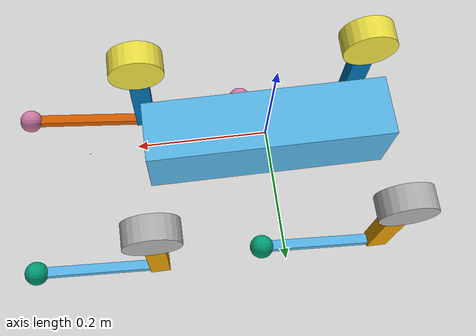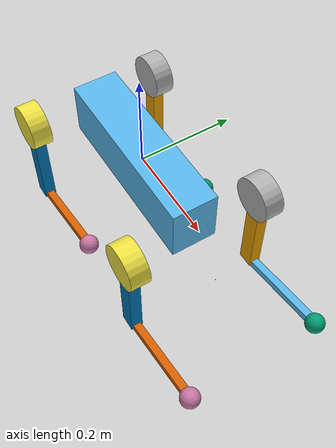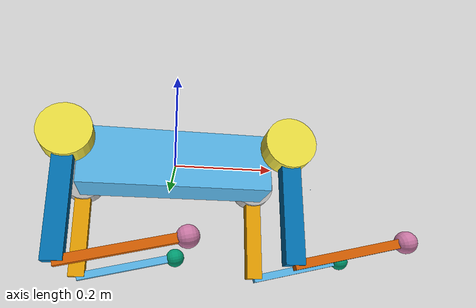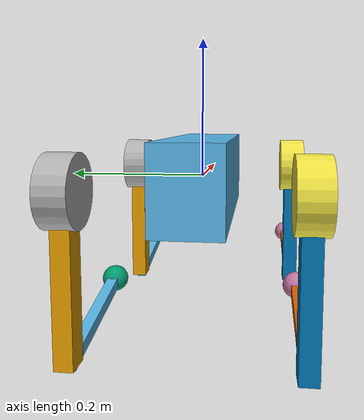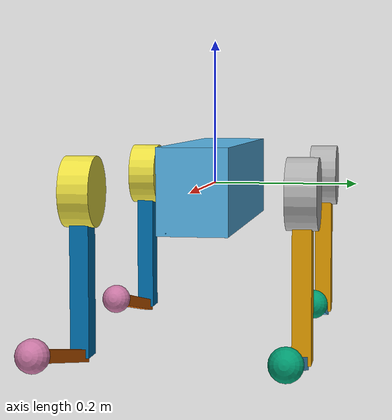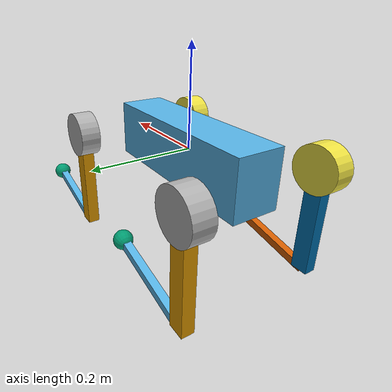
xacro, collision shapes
<?xml version="1.0"?>
<robot name="go2"
       xmlns:xacro="http://www.ros.org/wiki/xacro">

  <!-- == xacro arguments == -->
  <xacro:arg name="DEBUG"            default="false"/>
  <xacro:arg name="robot_controllers"
             default="$(find go2_sim)/config/ros_control.yaml"/>

  <!-- Real lidar IMU calibration imported from config/imu_calib_data.yaml -->
  <xacro:property name="lidar_imu_acc_bias_x" value="-0.801651"/>
  <xacro:property name="lidar_imu_acc_bias_y" value="1.72345"/>
  <xacro:property name="lidar_imu_acc_bias_z" value="-0.22166"/>
  <xacro:property name="lidar_imu_ang_bias_x" value="0.00149071"/>
  <xacro:property name="lidar_imu_ang_bias_y" value="0.00388548"/>
  <xacro:property name="lidar_imu_ang_bias_z" value="0.00161095"/>
  <!-- Derived from ang_z2x_proj=0.143694 and ang_z2y_proj=-0.19373 -->
  <xacro:property name="lidar_imu_roll" value="0.194961"/>
  <xacro:property name="lidar_imu_pitch" value="0.144193"/>

  <!-- == Include sub-files (shared sources of truth live in go2_description) == -->
  <xacro:include filename="$(find go2_description)/urdf/const.xacro"/>
  <xacro:include filename="$(find go2_description)/urdf/materials.xacro"/>
  <xacro:include filename="$(find go2_description)/urdf/leg.xacro"/>
  <xacro:include filename="$(find sensor_models)/urdf/l1_lidar.urdf.xacro"/>

  <!-- ign_ros2_control: loads controller_manager, reads ros_control.yaml -->
  <gazebo>
    <plugin filename="ign_ros2_control-system"
            name="ign_ros2_control::IgnitionROS2ControlPlugin">
      <parameters>$(arg robot_controllers)</parameters>
      <robot_param_node>robot_state_publisher</robot_param_node>
    </plugin>
  </gazebo>

  <!-- Joint state publisher: publishes /joint_states from sim -->
  <gazebo>
    <plugin filename="ignition-gazebo-joint-state-publisher-system"
            name="ignition::gazebo::systems::JointStatePublisher">
    </plugin>
  </gazebo>

  <gazebo>
    <plugin filename="ignition-gazebo-odometry-publisher-system"
            name="ignition::gazebo::systems::OdometryPublisher">
      <odom_frame>odom</odom_frame>
      <robot_base_frame>base_link</robot_base_frame>
      <odom_publish_frequency>50</odom_publish_frequency>
    </plugin>
  </gazebo>

  <xacro:if value="$(arg DEBUG)">
    <link name="world"/>
    <joint name="base_static_joint" type="fixed">
      <origin rpy="0 0 0" xyz="0 0 0"/>
      <parent link="world"/>
      <child link="base_link"/>
    </joint>
  </xacro:if>

  <link name="base_link">
    <visual>
      <origin rpy="0 0 0" xyz="0 0 0"/>
      <geometry><box size="0.001 0.001 0.001"/></geometry>
    </visual>
  </link>

  <joint name="floating_base" type="fixed">
    <origin rpy="0 0 0" xyz="0 0 0"/>
    <parent link="base_link"/>
    <child link="trunk"/>
  </joint>

  <link name="trunk">
    <visual>
      <origin rpy="0 0 0" xyz="0 0 0"/>
      <geometry>
        <mesh filename="package://go2_description/meshes/dae/base.dae" scale="1 1 1"/>
      </geometry>
    </visual>
    <collision>
      <origin rpy="0 0 0" xyz="0 0 0"/>
      <geometry>
        <box size="${trunk_length} ${trunk_width} ${trunk_height}"/>
      </geometry>
    </collision>
    <inertial>
      <origin rpy="0 0 0" xyz="${trunk_com_x} ${trunk_com_y} ${trunk_com_z}"/>
      <mass value="${trunk_mass}"/>
      <inertia ixx="${trunk_ixx}" ixy="${trunk_ixy}" ixz="${trunk_ixz}"
               iyy="${trunk_iyy}" iyz="${trunk_iyz}" izz="${trunk_izz}"/>
    </inertial>
  </link>

  <gazebo reference="trunk">
    <mu1>0.2</mu1>
    <mu2>0.2</mu2>
    <kp>10000.0</kp>
    <kd>1.0</kd>
  </gazebo>

  <!-- ====================================================================
       IMU LINK
       ==================================================================== -->
  <joint name="imu_joint" type="fixed">
    <parent link="trunk"/>
    <child link="imu_link"/>
    <origin rpy="0 0 0" xyz="0 0 0"/>
  </joint>

  <link name="imu_link">
    <inertial>
      <mass value="0.001"/>
      <origin rpy="0 0 0" xyz="0 0 0"/>
      <inertia ixx="0.0001" ixy="0" ixz="0" iyy="0.0001" iyz="0" izz="0.0001"/>
    </inertial>
    <visual>
      <origin rpy="0 0 0" xyz="0 0 0"/>
      <geometry><box size="0.001 0.001 0.001"/></geometry>
    </visual>
    <collision>
      <origin rpy="0 0 0" xyz="0 0 0"/>
      <geometry><box size="0.001 0.001 0.001"/></geometry>
    </collision>
  </link>

  <gazebo reference="imu_link">
    <sensor name="imu_sensor" type="imu">
      <always_on>1</always_on>
      <update_rate>200</update_rate>
      <topic>/imu/data</topic>
      <ignition_frame_id>imu_link</ignition_frame_id>
      <imu>
        <angular_velocity>
          <x><noise type="gaussian"><mean>0</mean><stddev>0.009</stddev></noise></x>
          <y><noise type="gaussian"><mean>0</mean><stddev>0.009</stddev></noise></y>
          <z><noise type="gaussian"><mean>0</mean><stddev>0.009</stddev></noise></z>
        </angular_velocity>
        <linear_acceleration>
          <x><noise type="gaussian"><mean>0</mean><stddev>0.021</stddev></noise></x>
          <y><noise type="gaussian"><mean>0</mean><stddev>0.021</stddev></noise></y>
          <z><noise type="gaussian"><mean>0</mean><stddev>0.021</stddev></noise></z>
        </linear_acceleration>
      </imu>
    </sensor>
  </gazebo>

  <!--  RF: mirror=-1 (right), mirror_dae=False (right mesh), front_hind=1, front_hind_dae=True  -->
  <xacro:leg name="rf" mirror="-1" mirror_dae="False" front_hind="1"  front_hind_dae="True"  parent="trunk" with_ros2_control="True"/>
  <!--  LF: mirror=1  (left),  mirror_dae=True  (left mesh),  front_hind=1, front_hind_dae=True  -->
  <xacro:leg name="lf" mirror="1"  mirror_dae="True"  front_hind="1"  front_hind_dae="True"  parent="trunk" with_ros2_control="True"/>
  <!--  RH: mirror=-1 (right), mirror_dae=False (right mesh), front_hind=-1, front_hind_dae=False -->
  <xacro:leg name="rh" mirror="-1" mirror_dae="False" front_hind="-1" front_hind_dae="False" parent="trunk" with_ros2_control="True"/>
  <!--  LH: mirror=1  (left),  mirror_dae=True  (left mesh),  front_hind=-1, front_hind_dae=False -->
  <xacro:leg name="lh" mirror="1"  mirror_dae="True"  front_hind="-1" front_hind_dae="False" parent="trunk" with_ros2_control="True"/>

  <!-- == Gazebo physics properties for legs == -->
  <!-- LF leg -->
  <gazebo reference="lf_hip_link">       <mu1>0.2</mu1><mu2>0.2</mu2></gazebo>
  <gazebo reference="lf_upper_leg_link"> <mu1>0.2</mu1><mu2>0.2</mu2><self_collide>1</self_collide><kp>10000.0</kp><kd>1.0</kd></gazebo>
  <gazebo reference="lf_lower_leg_link"> <mu1>0.2</mu1><mu2>0.2</mu2><self_collide>1</self_collide></gazebo>
  <gazebo reference="LF_FOOT">           <mu1>0.6</mu1><mu2>0.6</mu2><self_collide>1</self_collide><kp>10000.0</kp><kd>1.0</kd></gazebo>
  <!-- RF leg -->
  <gazebo reference="rf_hip_link">       <mu1>0.2</mu1><mu2>0.2</mu2></gazebo>
  <gazebo reference="rf_upper_leg_link"> <mu1>0.2</mu1><mu2>0.2</mu2><self_collide>1</self_collide><kp>10000.0</kp><kd>1.0</kd></gazebo>
  <gazebo reference="rf_lower_leg_link"> <mu1>0.2</mu1><mu2>0.2</mu2><self_collide>1</self_collide></gazebo>
  <gazebo reference="RF_FOOT">           <mu1>0.6</mu1><mu2>0.6</mu2><self_collide>1</self_collide><kp>10000.0</kp><kd>1.0</kd></gazebo>
  <!-- LH leg -->
  <gazebo reference="lh_hip_link">       <mu1>0.2</mu1><mu2>0.2</mu2></gazebo>
  <gazebo reference="lh_upper_leg_link"> <mu1>0.2</mu1><mu2>0.2</mu2><self_collide>1</self_collide><kp>10000.0</kp><kd>1.0</kd></gazebo>
  <gazebo reference="lh_lower_leg_link"> <mu1>0.2</mu1><mu2>0.2</mu2><self_collide>1</self_collide></gazebo>
  <gazebo reference="LH_FOOT">           <mu1>0.6</mu1><mu2>0.6</mu2><self_collide>1</self_collide><kp>10000.0</kp><kd>1.0</kd></gazebo>
  <!-- RH leg -->
  <gazebo reference="rh_hip_link">       <mu1>0.2</mu1><mu2>0.2</mu2></gazebo>
  <gazebo reference="rh_upper_leg_link"> <mu1>0.2</mu1><mu2>0.2</mu2><self_collide>1</self_collide><kp>10000.0</kp><kd>1.0</kd></gazebo>
  <gazebo reference="rh_lower_leg_link"> <mu1>0.2</mu1><mu2>0.2</mu2><self_collide>1</self_collide></gazebo>
  <gazebo reference="RH_FOOT">           <mu1>0.6</mu1><mu2>0.6</mu2><self_collide>1</self_collide><kp>10000.0</kp><kd>1.0</kd></gazebo>

  <gazebo reference="LF_FOOT">
    <sensor name="LF_FOOT_contact" type="contact">
      <always_on>1</always_on>
      <contact>
        <collision>LF_FOOT_collision</collision>
      </contact>
    </sensor>
  </gazebo>

  <gazebo reference="RF_FOOT">
    <sensor name="RF_FOOT_contact" type="contact">
      <always_on>1</always_on>
      <contact>
        <collision>RF_FOOT_collision</collision>
      </contact>
    </sensor>
  </gazebo>

  <gazebo reference="LH_FOOT">
    <sensor name="LH_FOOT_contact" type="contact">
      <always_on>1</always_on>
      <contact>
        <collision>LH_FOOT_collision</collision>
      </contact>
    </sensor>
  </gazebo>

  <gazebo reference="RH_FOOT">
    <sensor name="RH_FOOT_contact" type="contact">
      <always_on>1</always_on>
      <contact>
        <collision>RH_FOOT_collision</collision>
      </contact>
    </sensor>
  </gazebo>

  <xacro:l1_lidar parent="base_link" prefix="">
    <origin xyz="0.28945 0 -0.046825" rpy="0 -0.26179938779915 0"/>
  </xacro:l1_lidar>

  <joint name="lidar_to_lidar_imu" type="fixed">
    <parent link="lidar_link"/>
    <child  link="lidar_imu_link"/>
    <origin xyz="-0.007698 -0.014655 0.00667" rpy="0 0 0"/>
  </joint>

  <link name="lidar_imu_link">
    <inertial>
      <mass value="0.001"/>
      <origin xyz="0 0 0" rpy="0 0 0"/>
      <inertia ixx="1e-7" ixy="0" ixz="0" iyy="1e-7" iyz="0" izz="1e-7"/>
    </inertial>
    <visual>
      <origin rpy="0 0 0" xyz="0 0 0"/>
      <geometry><box size="0.001 0.001 0.001"/></geometry>
    </visual>
    <collision>
      <origin rpy="0 0 0" xyz="0 0 0"/>
      <geometry><box size="0.001 0.001 0.001"/></geometry>
    </collision>
  </link>

  <!--
    UniLidar built-in IMU sensor published on /lidar/imu.
    Bridged to ROS via ros_ign_bridge in sim_champ.launch.py.
    System plugin ignition-gazebo-imu-system is loaded in the world SDF.
  -->
  <gazebo reference="lidar_imu_link">
    <sensor name="lidar_imu_sensor" type="imu">
      <always_on>1</always_on>
      <update_rate>200</update_rate>
      <topic>/lidar/imu</topic>
      <ignition_frame_id>lidar_imu_link</ignition_frame_id>
      <imu>
        <angular_velocity>
          <x><noise type="gaussian"><mean>0.0</mean><stddev>0.009</stddev></noise></x>
          <y><noise type="gaussian"><mean>0.0</mean><stddev>0.009</stddev></noise></y>
          <z><noise type="gaussian"><mean>0.0</mean><stddev>0.009</stddev></noise></z>
        </angular_velocity>
        <linear_acceleration>
          <x><noise type="gaussian"><mean>0.0</mean><stddev>0.021</stddev></noise></x>
          <y><noise type="gaussian"><mean>0.0</mean><stddev>0.021</stddev></noise></y>
          <z><noise type="gaussian"><mean>0.0</mean><stddev>0.021</stddev></noise></z>
        </linear_acceleration>
      </imu>
    </sensor>
  </gazebo>

</robot>

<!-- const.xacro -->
<robot xmlns:xacro="http://www.ros.org/wiki/xacro">

    <!-- ──── Numeric constant ──── -->
    <xacro:property name="PI" value="3.1415926535897931"/>
    <xacro:property name="stick_mass" value="0.00001"/>

    <!-- ──── Simplified collision geometry ──── -->
    <xacro:property name="trunk_width"  value="0.0935"/>
    <xacro:property name="trunk_length" value="0.3762"/>
    <xacro:property name="trunk_height" value="0.114"/>
    <xacro:property name="hip_radius"   value="0.046"/>
    <xacro:property name="hip_length"   value="0.04"/>
    <xacro:property name="thigh_shoulder_radius" value="0.041"/>
    <xacro:property name="thigh_shoulder_length" value="0.032"/>
    <xacro:property name="thigh_width"  value="0.0245"/>
    <xacro:property name="thigh_height" value="0.034"/>
    <xacro:property name="calf_width"   value="0.016"/>
    <xacro:property name="calf_height"  value="0.016"/>
    <xacro:property name="foot_radius"  value="0.02"/>
    <xacro:property name="stick_radius" value="0.01"/>
    <xacro:property name="stick_length" value="0.2"/>

    <!-- ──── Kinematic lengths ──── -->
    <xacro:property name="thigh_offset" value="0.0955"/>
    <xacro:property name="thigh_length" value="0.213"/>
    <xacro:property name="calf_length"  value="0.213"/>

    <!-- ──── Leg offsets from trunk centre ──── -->
    <xacro:property name="leg_offset_x" value="0.1934"/>
    <xacro:property name="leg_offset_y" value="0.0465"/>
    <xacro:property name="hip_offset"   value="0.0955"/>

    <!-- Explicit per-axis offsets (redundant with above, kept for readability) -->
    <xacro:property name="hip_offset_x" value="0.1934"/>
    <xacro:property name="hip_offset_y" value="0.0465"/>
    <xacro:property name="hip_offset_z" value="0.0"/>

    <xacro:property name="thigh_offset_x" value="0"/>
    <xacro:property name="thigh_offset_y" value="0.0955"/>
    <xacro:property name="thigh_offset_z" value="0.0"/>

    <xacro:property name="calf_offset_x" value="0.0"/>
    <xacro:property name="calf_offset_y" value="0.0"/>
    <xacro:property name="calf_offset_z" value="-0.213"/>

    <!-- ──── Joint limits ──── -->
    <xacro:property name="damping"  value="0.01"/>
    <xacro:property name="friction" value="0.2"/>

    <xacro:property name="hip_position_max"   value="1.0472"/>
    <xacro:property name="hip_position_min"   value="-1.0472"/>
    <xacro:property name="hip_velocity_max"   value="30.1"/>
    <xacro:property name="hip_torque_max"     value="23.7"/>

    <xacro:property name="thigh_position_max" value="3.4907"/>
    <xacro:property name="thigh_position_min" value="-1.5708"/>
    <xacro:property name="thigh_velocity_max" value="30.1"/>
    <xacro:property name="thigh_torque_max"   value="23.7"/>

    <xacro:property name="calf_position_max"  value="-0.83776"/>
    <xacro:property name="calf_position_min"  value="-2.7227"/>
    <xacro:property name="calf_velocity_max"  value="20.06"/>
    <xacro:property name="calf_torque_max"    value="35.55"/>

    <!-- ──── Inertial values ──── -->
    <!-- trunk -->
    <xacro:property name="trunk_mass"  value="6.921"/>
    <xacro:property name="trunk_com_x" value="0.021112"/>
    <xacro:property name="trunk_com_y" value="0.00"/>
    <xacro:property name="trunk_com_z" value="-0.005366"/>
    <xacro:property name="trunk_ixx"   value="0.02448"/>
    <xacro:property name="trunk_ixy"   value="0.00012166"/>
    <xacro:property name="trunk_ixz"   value="0.0014849"/>
    <xacro:property name="trunk_iyy"   value="0.098077"/>
    <xacro:property name="trunk_iyz"   value="-3.12E-05"/>
    <xacro:property name="trunk_izz"   value="0.107"/>

    <!-- hip (left-front reference; mirroring applied in leg macro) -->
    <xacro:property name="hip_mass"   value="0.678"/>
    <xacro:property name="hip_com_x"  value="-0.0054"/>
    <xacro:property name="hip_com_y"  value="0.00194"/>
    <xacro:property name="hip_com_z"  value="-0.000105"/>
    <xacro:property name="hip_ixx"    value="0.00048"/>
    <xacro:property name="hip_ixy"    value="-3.01E-06"/>
    <xacro:property name="hip_ixz"    value="1.11E-06"/>
    <xacro:property name="hip_iyy"    value="0.000884"/>
    <xacro:property name="hip_iyz"    value="-1.42E-06"/>
    <xacro:property name="hip_izz"    value="0.000596"/>

    <!-- thigh -->
    <xacro:property name="thigh_mass"  value="1.152"/>
    <xacro:property name="thigh_com_x" value="-0.00374"/>
    <xacro:property name="thigh_com_y" value="-0.0223"/>
    <xacro:property name="thigh_com_z" value="-0.0327"/>
    <xacro:property name="thigh_ixx"   value="0.00584"/>
    <xacro:property name="thigh_ixy"   value="8.72E-05"/>
    <xacro:property name="thigh_ixz"   value="-0.000289"/>
    <xacro:property name="thigh_iyy"   value="0.0058"/>
    <xacro:property name="thigh_iyz"   value="0.000808"/>
    <xacro:property name="thigh_izz"   value="0.00103"/>

    <!-- calf -->
    <xacro:property name="calf_mass"   value="0.154"/>
    <xacro:property name="calf_com_x"  value="0.00548"/>
    <xacro:property name="calf_com_y"  value="-0.000975"/>
    <xacro:property name="calf_com_z"  value="-0.115"/>
    <xacro:property name="calf_ixx"    value="0.00108"/>
    <xacro:property name="calf_ixy"    value="3.4E-07"/>
    <xacro:property name="calf_ixz"    value="1.72E-05"/>
    <xacro:property name="calf_iyy"    value="0.0011"/>
    <xacro:property name="calf_iyz"    value="8.28E-06"/>
    <xacro:property name="calf_izz"    value="3.29E-05"/>

    <!-- foot -->
    <xacro:property name="foot_mass" value="0.06"/>

</robot>

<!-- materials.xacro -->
<!--
  materials.xacro
  URDF material definitions for the Unitree Go2.

  Source: khaledgabr77/unitree_go2_ros2 / unitree_go2_description/urdf/materials.xacro
  Ported verbatim — no changes.
-->
<robot>

    <material name="black">
        <color rgba="0.0 0.0 0.0 1.0"/>
    </material>

    <material name="blue">
        <color rgba="0.0 0.0 0.8 1.0"/>
    </material>

    <material name="green">
        <color rgba="0.0 0.8 0.0 1.0"/>
    </material>

    <material name="grey">
        <color rgba="0.2 0.2 0.2 0.0"/>
    </material>

    <material name="silver">
        <color rgba="${233/255} ${233/255} ${216/255} 1.0"/>
    </material>

    <material name="orange">
        <color rgba="${255/255} ${108/255} ${10/255} 1.0"/>
    </material>

    <material name="brown">
        <color rgba="${222/255} ${207/255} ${195/255} 1.0"/>
    </material>

    <material name="red">
        <color rgba="0.8 0.0 0.0 1.0"/>
    </material>

    <material name="white">
        <color rgba="1.0 1.0 1.0 1.0"/>
    </material>

</robot>

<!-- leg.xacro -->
<robot xmlns:xacro="http://www.ros.org/wiki/xacro">

    <xacro:macro name="leg" params="name mirror mirror_dae front_hind front_hind_dae parent:=^|'trunk' with_ros2_control:=^|False">

        <!-- Derive CHAMP-convention foot link name from leg prefix -->
        <xacro:if value="${name == 'lf'}">
            <xacro:property name="foot_link_name" value="LF_FOOT"/>
        </xacro:if>
        <xacro:if value="${name == 'rf'}">
            <xacro:property name="foot_link_name" value="RF_FOOT"/>
        </xacro:if>
        <xacro:if value="${name == 'lh'}">
            <xacro:property name="foot_link_name" value="LH_FOOT"/>
        </xacro:if>
        <xacro:if value="${name == 'rh'}">
            <xacro:property name="foot_link_name" value="RH_FOOT"/>
        </xacro:if>

        <!-- ── Hip joint ── -->
        <joint name="${name}_hip_joint" type="revolute">
            <xacro:if value="${(mirror_dae == False) and (front_hind_dae == True)}">
                <origin rpy="0 0 0" xyz="${leg_offset_x} ${-leg_offset_y} 0"/>
            </xacro:if>
            <xacro:if value="${(mirror_dae == True) and (front_hind_dae == True)}">
                <origin rpy="0 0 0" xyz="${leg_offset_x} ${leg_offset_y} 0"/>
            </xacro:if>
            <xacro:if value="${(mirror_dae == False) and (front_hind_dae == False)}">
                <origin rpy="0 0 0" xyz="${-leg_offset_x} ${-leg_offset_y} 0"/>
            </xacro:if>
            <xacro:if value="${(mirror_dae == True) and (front_hind_dae == False)}">
                <origin rpy="0 0 0" xyz="${-leg_offset_x} ${leg_offset_y} 0"/>
            </xacro:if>
            <parent link="${parent}"/>
            <child link="${name}_hip_link"/>
            <axis xyz="1 0 0"/>
            <dynamics damping="${damping}" friction="${friction}"/>
            <xacro:if value="${(mirror_dae == True)}">
                <limit effort="${hip_torque_max}" velocity="${hip_velocity_max}"
                       lower="${hip_position_min}" upper="${hip_position_max}"/>
            </xacro:if>
            <xacro:if value="${(mirror_dae == False)}">
                <limit effort="${hip_torque_max}" velocity="${hip_velocity_max}"
                       lower="${-hip_position_max}" upper="${-hip_position_min}"/>
            </xacro:if>
        </joint>

        <!-- ── Hip link ── -->
        <link name="${name}_hip_link">
            <visual>
                <xacro:if value="${(mirror_dae == True) and (front_hind_dae == True)}">
                    <origin rpy="0 0 0" xyz="0 0 0"/>
                </xacro:if>
                <xacro:if value="${(mirror_dae == False) and (front_hind_dae == True)}">
                    <origin rpy="${PI} 0 0" xyz="0 0 0"/>
                </xacro:if>
                <xacro:if value="${(mirror_dae == True) and (front_hind_dae == False)}">
                    <origin rpy="0 ${PI} 0" xyz="0 0 0"/>
                </xacro:if>
                <xacro:if value="${(mirror_dae == False) and (front_hind_dae == False)}">
                    <origin rpy="${PI} ${PI} 0" xyz="0 0 0"/>
                </xacro:if>
                <geometry>
                    <mesh filename="package://go2_description/meshes/dae/hip.dae" scale="1 1 1"/>
                </geometry>
            </visual>
            <collision>
                <origin rpy="${PI/2.0} 0 0" xyz="0 ${hip_offset*mirror} 0"/>
                <geometry>
                    <cylinder length="${hip_length}" radius="${hip_radius}"/>
                </geometry>
            </collision>
            <inertial>
                <origin rpy="0 0 0"
                        xyz="${hip_com_x*front_hind} ${hip_com_y*mirror} ${hip_com_z}"/>
                <mass value="${hip_mass}"/>
                <inertia
                    ixx="${hip_ixx}"
                    ixy="${hip_ixy*mirror*front_hind}"
                    ixz="${hip_ixz*front_hind}"
                    iyy="${hip_iyy}"
                    iyz="${hip_iyz*mirror}"
                    izz="${hip_izz}"/>
            </inertial>
        </link>

        <!-- ── Upper leg joint ── -->
        <joint name="${name}_upper_leg_joint" type="revolute">
            <origin rpy="0 0 0" xyz="0 ${thigh_offset*mirror} 0"/>
            <parent link="${name}_hip_link"/>
            <child link="${name}_upper_leg_link"/>
            <axis xyz="0 1 0"/>
            <dynamics damping="${damping}" friction="${friction}"/>
            <limit effort="${thigh_torque_max}" velocity="${thigh_velocity_max}"
                   lower="${thigh_position_min}" upper="${thigh_position_max}"/>
        </joint>

        <!-- ── Upper leg link ── -->
        <link name="${name}_upper_leg_link">
            <visual>
                <origin rpy="0 0 0" xyz="0 0 0"/>
                <geometry>
                    <xacro:if value="${mirror_dae == True}">
                        <mesh filename="package://go2_description/meshes/dae/thigh.dae" scale="1 1 1"/>
                    </xacro:if>
                    <xacro:if value="${mirror_dae == False}">
                        <mesh filename="package://go2_description/meshes/dae/thigh_mirror.dae" scale="1 1 1"/>
                    </xacro:if>
                </geometry>
            </visual>
            <collision>
                <origin rpy="0 ${PI/2.0} 0" xyz="0 0 ${-thigh_length/2.0}"/>
                <geometry>
                    <box size="${thigh_length} ${thigh_width} ${thigh_height}"/>
                </geometry>
            </collision>
            <inertial>
                <origin rpy="0 0 0"
                        xyz="${thigh_com_x} ${thigh_com_y*mirror} ${thigh_com_z}"/>
                <mass value="${thigh_mass}"/>
                <inertia
                    ixx="${thigh_ixx}"
                    ixy="${thigh_ixy*mirror}"
                    ixz="${thigh_ixz}"
                    iyy="${thigh_iyy}"
                    iyz="${thigh_iyz*mirror}"
                    izz="${thigh_izz}"/>
            </inertial>
        </link>

        <!-- ── Lower leg joint ── -->
        <joint name="${name}_lower_leg_joint" type="revolute">
            <origin rpy="0 0 0" xyz="0 0 ${-thigh_length}"/>
            <parent link="${name}_upper_leg_link"/>
            <child link="${name}_lower_leg_link"/>
            <axis xyz="0 1 0"/>
            <dynamics damping="${damping}" friction="${friction}"/>
            <limit effort="${calf_torque_max}" velocity="${calf_velocity_max}"
                   lower="${calf_position_min}" upper="${calf_position_max}"/>
        </joint>

        <!-- ── Lower leg link ── -->
        <link name="${name}_lower_leg_link">
            <visual>
                <origin rpy="0 0 0" xyz="0 0 0"/>
                <geometry>
                    <mesh filename="package://go2_description/meshes/dae/calf.dae" scale="1 1 1"/>
                </geometry>
            </visual>
            <collision>
                <origin rpy="0 ${PI/2.0} 0" xyz="0 0 ${-calf_length/2.0}"/>
                <geometry>
                    <box size="${calf_length} ${calf_width} ${calf_height}"/>
                </geometry>
            </collision>
            <inertial>
                <origin rpy="0 0 0"
                        xyz="${calf_com_x} ${calf_com_y} ${calf_com_z}"/>
                <mass value="${calf_mass}"/>
                <inertia
                    ixx="${calf_ixx}"
                    ixy="${calf_ixy}"
                    ixz="${calf_ixz}"
                    iyy="${calf_iyy}"
                    iyz="${calf_iyz}"
                    izz="${calf_izz}"/>
            </inertial>
        </link>

        <!-- ── Foot joint  (child = CHAMP uppercase foot link name) ── -->
        <joint name="${name}_foot_joint" type="fixed">
            <origin rpy="0 0 0" xyz="0 0 ${-(calf_length)}"/>
            <parent link="${name}_lower_leg_link"/>
            <child link="${foot_link_name}"/>
        </joint>

        <!-- ── Foot link  (CHAMP-convention uppercase name) ── -->
        <link name="${foot_link_name}">
            <visual>
                <origin rpy="0 0 0" xyz="0 0 0"/>
                <geometry>
                    <sphere radius="${foot_radius-0.01}"/>
                </geometry>
            </visual>
            <collision>
                <origin rpy="0 0 0" xyz="0 0 0"/>
                <geometry>
                    <sphere radius="${foot_radius}"/>
                </geometry>
            </collision>
            <inertial>
                <mass value="${foot_mass}"/>
                <inertia
                    ixx="${(2*foot_mass)/5.0*(foot_radius*foot_radius)}"
                    ixy="0.0" ixz="0.0"
                    iyy="${(2*foot_mass)/5.0*(foot_radius*foot_radius)}"
                    iyz="0.0"
                    izz="${(2*foot_mass)/5.0*(foot_radius*foot_radius)}"/>
            </inertial>
        </link>

        <!-- Gazebo-only ros2_control block (gated; hardware URDF omits it). -->
        <xacro:if value="${with_ros2_control == True}">
            <ros2_control name="${name}" type="system">
                <hardware>
                    <plugin>ign_ros2_control/IgnitionSystem</plugin>
                </hardware>
                <joint name="${name}_hip_joint">
                    <command_interface name="effort"/>
                    <state_interface name="position"/>
                    <state_interface name="velocity"/>
                </joint>
                <joint name="${name}_upper_leg_joint">
                    <command_interface name="effort"/>
                    <state_interface name="position"/>
                    <state_interface name="velocity"/>
                </joint>
                <joint name="${name}_lower_leg_joint">
                    <command_interface name="effort"/>
                    <state_interface name="position"/>
                    <state_interface name="velocity"/>
                </joint>
            </ros2_control>
        </xacro:if>

    </xacro:macro>

</robot>

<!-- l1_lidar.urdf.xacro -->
<robot xmlns:xacro="http://www.ros.org/wiki/xacro">

  <xacro:macro name="l1_lidar" params="
      parent
      prefix
      range_min:=0.1
      range_max:=30.0
      *origin">

    <link name="${prefix}lidar_link">
      <visual>
        <origin xyz="0 0 0" rpy="0 0 0"/>
        <geometry>
          <cylinder radius="0.04" length="0.02"/>
        </geometry>
        <material name="lidar_black">
          <color rgba="0.05 0.05 0.05 1.0"/>
        </material>
      </visual>
      <inertial>
        <mass value="0.5"/>
        <origin xyz="0 0 0" rpy="0 0 0"/>
        <inertia ixx="0.001" ixy="0" ixz="0" iyy="0.001" iyz="0" izz="0.001"/>
      </inertial>
    </link>

    <joint name="${prefix}lidar_l1_joint" type="fixed">
      <parent link="${parent}"/>
      <child link="${prefix}lidar_link"/>
      <xacro:insert_block name="origin"/>
    </joint>

    <gazebo reference="${prefix}lidar_link">
      <sensor name="${prefix}lidar_l1" type="gpu_lidar">
        <topic>/unilidar/cloud</topic>
        <update_rate>11</update_rate>
        <always_on>true</always_on>
        <visualize>true</visualize>
        <ignition_frame_id>${prefix}lidar_link</ignition_frame_id>
        <lidar>
          <scan>
            <horizontal>
              <!-- 360 deg sweep - L1 spec: 360 deg horizontal FOV -->
              <samples>360</samples>
              <resolution>1</resolution>
              <min_angle>-3.14159265358978</min_angle>
              <max_angle>3.14159265358979</max_angle>
            </horizontal>
            <vertical>
              <samples>36</samples>
              <resolution>1</resolution>
              <min_angle>-1.5</min_angle>
              <max_angle>0.1</max_angle>
            </vertical>
          </scan>
          <range>
            <!-- Fortress is stable here with a 0.1 m near clip. -->
            <min>${range_min}</min>
            <max>${range_max}</max>
            <resolution>0.01</resolution>
          </range>
          <noise>
            <type>gaussian</type>
            <mean>0.0</mean>
            <stddev>0.008</stddev>
          </noise>
        </lidar>
      </sensor>
    </gazebo>

  </xacro:macro>
</robot>
